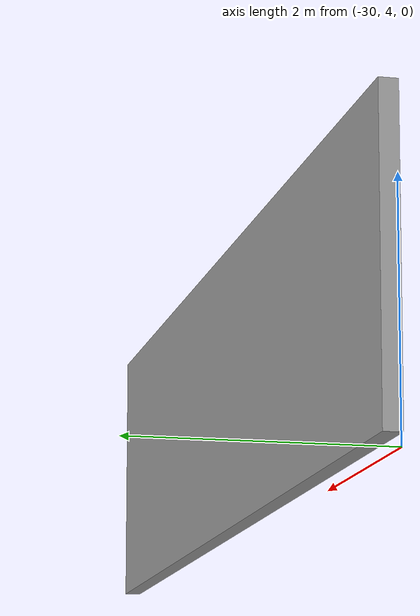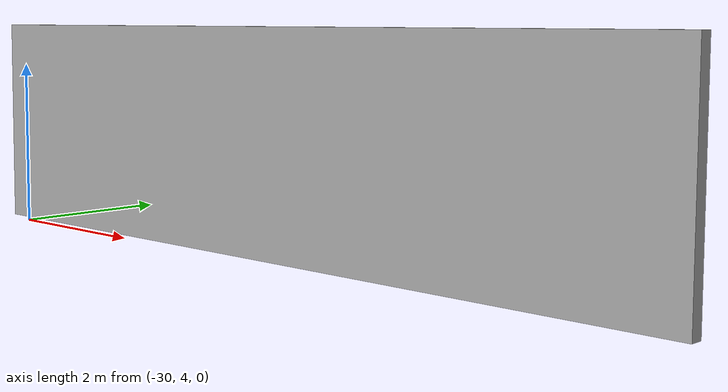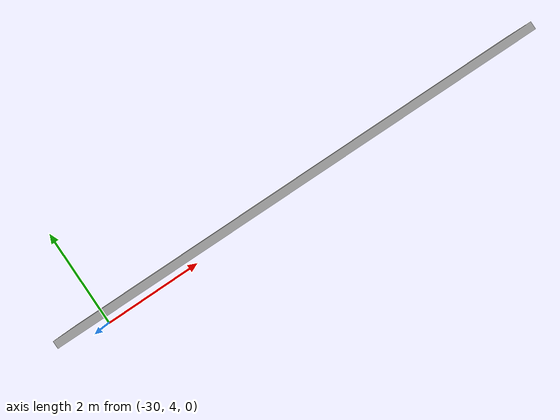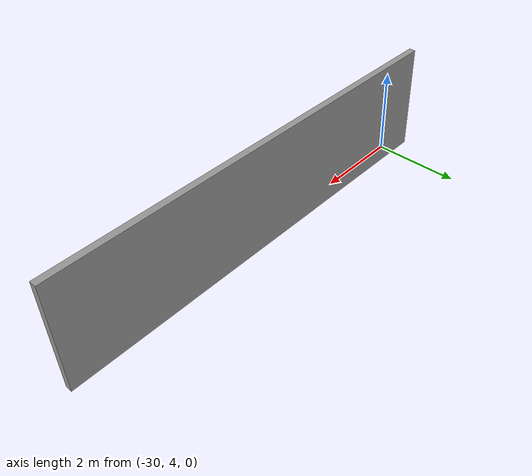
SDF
<?xml version='1.0'?>
<sdf version='1.7'>
  <model name='monu1'>
    <pose>-15.2828 2.15329 0 0 -0 0</pose>
    <link name='Wall_863'>
      <collision name='Wall_863_Collision'>
        <geometry>
          <box>
            <size>9.75 0.15 2.5</size>
          </box>
        </geometry>
        <pose>0 0 1.25 0 -0 0</pose>
      </collision>
      <visual name='Wall_863_Visual'>
        <pose>0 0 1.25 0 -0 0</pose>
        <geometry>
          <box>
            <size>9.75 0.15 2.5</size>
          </box>
        </geometry>
        <material>
          <script>
            <uri>file://media/materials/scripts/gazebo.material</uri>
            <name>Gazebo/Grey</name>
          </script>
          <ambient>1 1 1 1</ambient>
        </material>
        <meta>
          <layer>0</layer>
        </meta>
      </visual>
      <pose>-10.4078 2.07829 0 0 -0 0</pose>
    </link>
    <static>1</static>
  </model>
</sdf>
